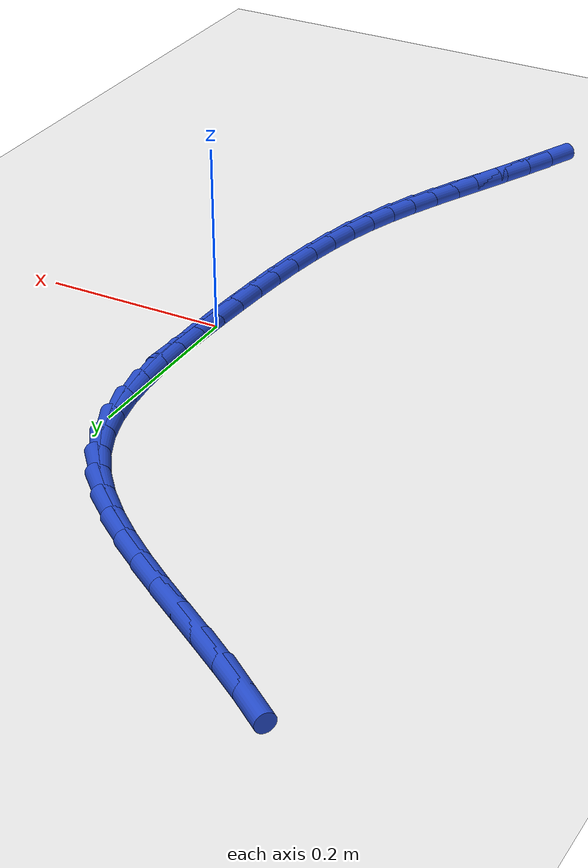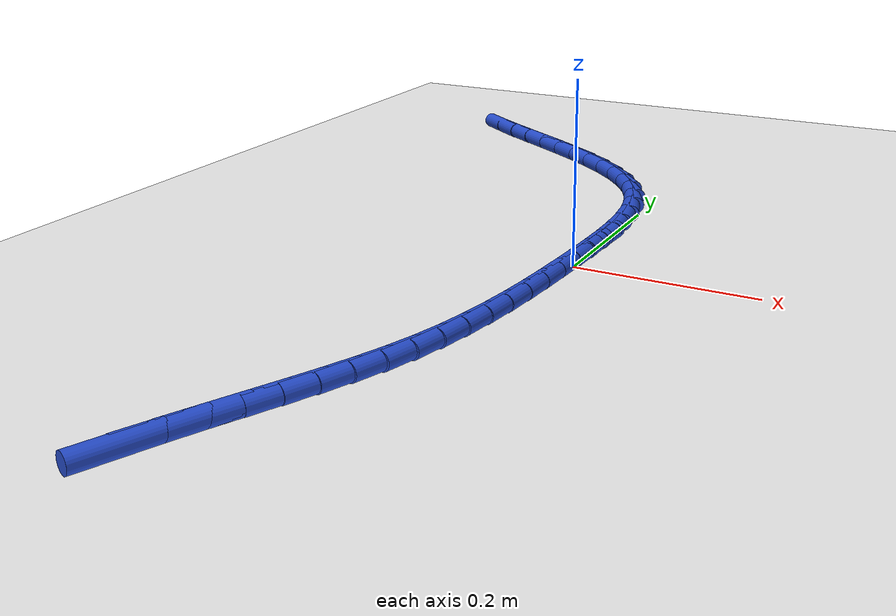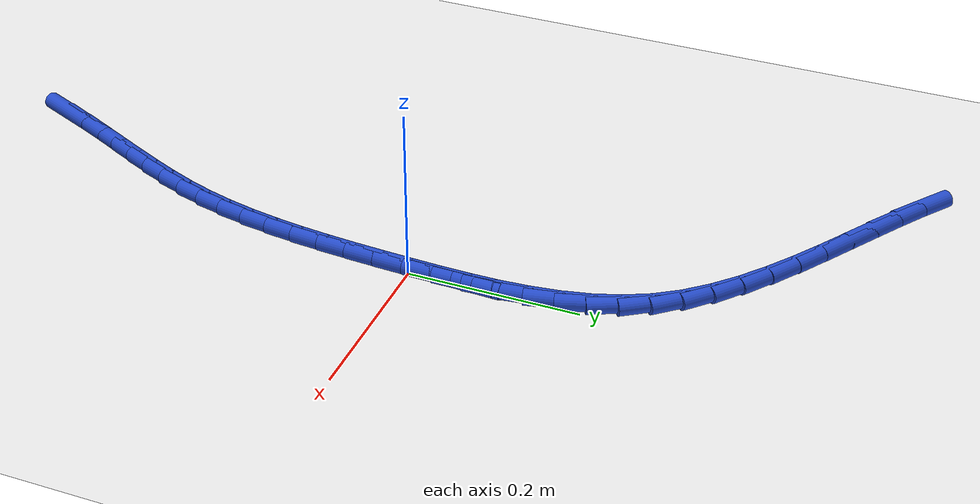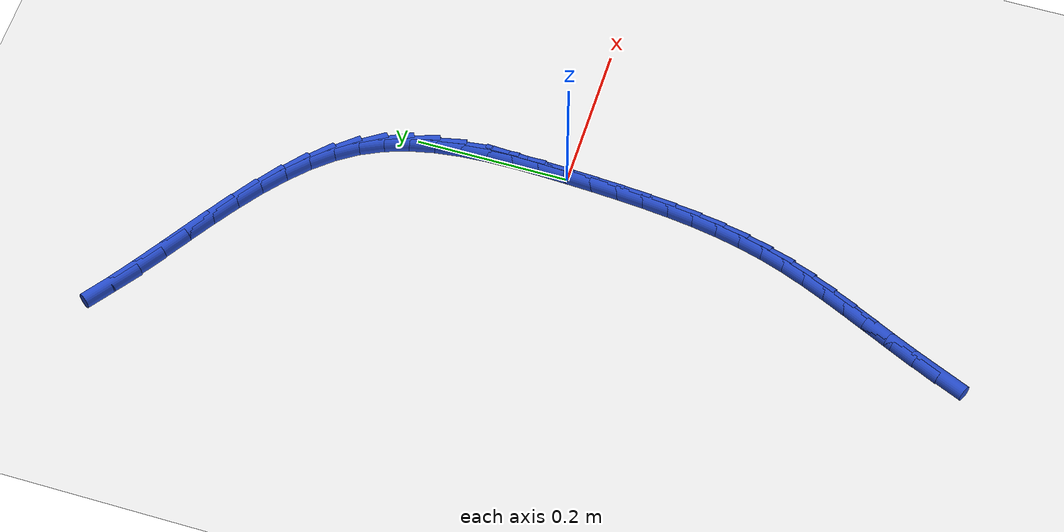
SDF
<sdf version="1.6">
 <world name="default">
  <model name="ground_plane">
   <static>1</static>
   <link name="link">
    <collision name="collision">
     <geometry><plane><normal>0 0 1</normal><size>100 100</size></plane></geometry>
     <surface><friction><ode><mu>100</mu><mu2>50</mu2></ode></friction></surface>
    </collision>
    <visual name="visual">
     <cast_shadows>0</cast_shadows>
     <geometry><plane><normal>0 0 1</normal><size>100 100</size></plane></geometry>
     <material>
      <script><uri>file://media/materials/scripts/gazebo.material</uri><name>Gazebo/WhiteGlow</name></script>
     </material>
    </visual>
   </link>
  </model>
  <model name="line">
   <link name="link_0">
    <pose>7.15573433840433e-18 6.245004513516506e-17 0.01 0 1.57 1.526935981426265</pose>
    <collision name="collision">
     <geometry><cylinder><radius>0.01</radius><length>0.08</length></cylinder></geometry>
    </collision>
    <visual name="visual">
     <material>
      <script><name>Gazebo/Blue</name><uri>file://media/materials/scripts/gazebo.material</uri></script>
     </material>
     <geometry><cylinder><radius>0.01</radius><length>0.08</length></cylinder></geometry>
    </visual>
   </link>
   <link name="link_1">
    <pose>0.0015649802183906286 0.03565809943909584 0.01 0 1.57 1.547007990299336</pose>
    <collision name="collision">
     <geometry><cylinder><radius>0.01</radius><length>0.08</length></cylinder></geometry>
    </collision>
    <visual name="visual">
     <material>
      <script><name>Gazebo/Blue</name><uri>file://media/materials/scripts/gazebo.material</uri></script>
     </material>
     <geometry><cylinder><radius>0.01</radius><length>0.08</length></cylinder></geometry>
    </visual>
   </link>
   <link name="link_2">
    <pose>0.002413735943892878 0.07133085950181656 0.01 0 1.57 -1.5597450419062657</pose>
    <collision name="collision">
     <geometry><cylinder><radius>0.01</radius><length>0.08</length></cylinder></geometry>
    </collision>
    <visual name="visual">
     <material>
      <script><name>Gazebo/Blue</name><uri>file://media/materials/scripts/gazebo.material</uri></script>
     </material>
     <geometry><cylinder><radius>0.01</radius><length>0.08</length></cylinder></geometry>
    </visual>
   </link>
   <link name="link_3">
    <pose>0.0020225366100942973 0.10672795692253452 0.01 0 1.57 -1.5090084050465444</pose>
    <collision name="collision">
     <geometry><cylinder><radius>0.01</radius><length>0.08</length></cylinder></geometry>
    </collision>
    <visual name="visual">
     <material>
      <script><name>Gazebo/Blue</name><uri>file://media/materials/scripts/gazebo.material</uri></script>
     </material>
     <geometry><cylinder><radius>0.01</radius><length>0.08</length></cylinder></geometry>
    </visual>
   </link>
   <link name="link_4">
    <pose>-0.00013234834941757475 0.14155906843562185 0.01 0 1.57 -1.4407810871709563</pose>
    <collision name="collision">
     <geometry><cylinder><radius>0.01</radius><length>0.08</length></cylinder></geometry>
    </collision>
    <visual name="visual">
     <material>
      <script><name>Gazebo/Blue</name><uri>file://media/materials/scripts/gazebo.material</uri></script>
     </material>
     <geometry><cylinder><radius>0.01</radius><length>0.08</length></cylinder></geometry>
    </visual>
   </link>
   <link name="link_5">
    <pose>-0.004574649501055192 0.175533870775451 0.01 0 1.57 -1.3533382078417666</pose>
    <collision name="collision">
     <geometry><cylinder><radius>0.01</radius><length>0.08</length></cylinder></geometry>
    </collision>
    <visual name="visual">
     <material>
      <script><name>Gazebo/Blue</name><uri>file://media/materials/scripts/gazebo.material</uri></script>
     </material>
     <geometry><cylinder><radius>0.01</radius><length>0.08</length></cylinder></geometry>
    </visual>
   </link>
   <link name="link_6">
    <pose>-0.01182809741123102 0.20836204067639408 0.01 0 1.57 -1.2454780661886489</pose>
    <collision name="collision">
     <geometry><cylinder><radius>0.01</radius><length>0.08</length></cylinder></geometry>
    </collision>
    <visual name="visual">
     <material>
      <script><name>Gazebo/Blue</name><uri>file://media/materials/scripts/gazebo.material</uri></script>
     </material>
     <geometry><cylinder><radius>0.01</radius><length>0.08</length></cylinder></geometry>
    </visual>
   </link>
   <link name="link_7">
    <pose>-0.022416422646357508 0.2397532548728233 0.01 0 1.57 -1.1175864413855836</pose>
    <collision name="collision">
     <geometry><cylinder><radius>0.01</radius><length>0.08</length></cylinder></geometry>
    </collision>
    <visual name="visual">
     <material>
      <script><name>Gazebo/Blue</name><uri>file://media/materials/scripts/gazebo.material</uri></script>
     </material>
     <geometry><cylinder><radius>0.01</radius><length>0.08</length></cylinder></geometry>
    </visual>
   </link>
   <link name="link_8">
    <pose>-0.03686335577284712 0.269417190099111 0.01 0 1.57 -0.9787864145099151</pose>
    <collision name="collision">
     <geometry><cylinder><radius>0.01</radius><length>0.08</length></cylinder></geometry>
    </collision>
    <visual name="visual">
     <material>
      <script><name>Gazebo/Blue</name><uri>file://media/materials/scripts/gazebo.material</uri></script>
     </material>
     <geometry><cylinder><radius>0.01</radius><length>0.08</length></cylinder></geometry>
    </visual>
   </link>
   <link name="link_9">
    <pose>-0.05551379721671593 0.29715140356162123 0.01 0 1.57 -0.8578253520761805</pose>
    <collision name="collision">
     <geometry><cylinder><radius>0.01</radius><length>0.08</length></cylinder></geometry>
    </collision>
    <visual name="visual">
     <material>
      <script><name>Gazebo/Blue</name><uri>file://media/materials/scripts/gazebo.material</uri></script>
     </material>
     <geometry><cylinder><radius>0.01</radius><length>0.08</length></cylinder></geometry>
    </visual>
   </link>
   <link name="link_10">
    <pose>-0.07796836102066894 0.32311920870063654 0.01 0 1.57 -0.7613462970906467</pose>
    <collision name="collision">
     <geometry><cylinder><radius>0.01</radius><length>0.08</length></cylinder></geometry>
    </collision>
    <visual name="visual">
     <material>
      <script><name>Gazebo/Blue</name><uri>file://media/materials/scripts/gazebo.material</uri></script>
     </material>
     <geometry><cylinder><radius>0.01</radius><length>0.08</length></cylinder></geometry>
    </visual>
   </link>
   <link name="link_11">
    <pose>-0.103634057336789 0.3475790595253034 0.01 0 1.57 -0.6871896803333584</pose>
    <collision name="collision">
     <geometry><cylinder><radius>0.01</radius><length>0.08</length></cylinder></geometry>
    </collision>
    <visual name="visual">
     <material>
      <script><name>Gazebo/Blue</name><uri>file://media/materials/scripts/gazebo.material</uri></script>
     </material>
     <geometry><cylinder><radius>0.01</radius><length>0.08</length></cylinder></geometry>
    </visual>
   </link>
   <link name="link_12">
    <pose>-0.13191789588612848 0.3707894102565844 0.01 0 1.57 -0.6325924469153109</pose>
    <collision name="collision">
     <geometry><cylinder><radius>0.01</radius><length>0.08</length></cylinder></geometry>
    </collision>
    <visual name="visual">
     <material>
      <script><name>Gazebo/Blue</name><uri>file://media/materials/scripts/gazebo.material</uri></script>
     </material>
     <geometry><cylinder><radius>0.01</radius><length>0.08</length></cylinder></geometry>
    </visual>
   </link>
   <link name="link_13">
    <pose>-0.16222688638973973 0.39300871511544244 0.01 0 1.57 -0.5950781534837368</pose>
    <collision name="collision">
     <geometry><cylinder><radius>0.01</radius><length>0.08</length></cylinder></geometry>
    </collision>
    <visual name="visual">
     <material>
      <script><name>Gazebo/Blue</name><uri>file://media/materials/scripts/gazebo.material</uri></script>
     </material>
     <geometry><cylinder><radius>0.01</radius><length>0.08</length></cylinder></geometry>
    </visual>
   </link>
   <link name="link_14">
    <pose>-0.19396803856867534 0.41449542832284053 0.01 0 1.57 -0.572814684261864</pose>
    <collision name="collision">
     <geometry><cylinder><radius>0.01</radius><length>0.08</length></cylinder></geometry>
    </collision>
    <visual name="visual">
     <material>
      <script><name>Gazebo/Blue</name><uri>file://media/materials/scripts/gazebo.material</uri></script>
     </material>
     <geometry><cylinder><radius>0.01</radius><length>0.08</length></cylinder></geometry>
    </visual>
   </link>
   <link name="link_15">
    <pose>-0.2265483621439877 0.43550800409974133 0.01 0 1.57 -0.5647166380640539</pose>
    <collision name="collision">
     <geometry><cylinder><radius>0.01</radius><length>0.08</length></cylinder></geometry>
    </collision>
    <visual name="visual">
     <material>
      <script><name>Gazebo/Blue</name><uri>file://media/materials/scripts/gazebo.material</uri></script>
     </material>
     <geometry><cylinder><radius>0.01</radius><length>0.08</length></cylinder></geometry>
    </visual>
   </link>
   <link name="link_16">
    <pose>-0.2593748668367293 0.4563048966671078 0.01 0 1.57 -0.5704625095506994</pose>
    <collision name="collision">
     <geometry><cylinder><radius>0.01</radius><length>0.08</length></cylinder></geometry>
    </collision>
    <visual name="visual">
     <material>
      <script><name>Gazebo/Blue</name><uri>file://media/materials/scripts/gazebo.material</uri></script>
     </material>
     <geometry><cylinder><radius>0.01</radius><length>0.08</length></cylinder></geometry>
    </visual>
   </link>
   <link name="link_17">
    <pose>-0.29185456236795254 0.47714456024590235 0.01 0 1.57 -0.5905071314055473</pose>
    <collision name="collision">
     <geometry><cylinder><radius>0.01</radius><length>0.08</length></cylinder></geometry>
    </collision>
    <visual name="visual">
     <material>
      <script><name>Gazebo/Blue</name><uri>file://media/materials/scripts/gazebo.material</uri></script>
     </material>
     <geometry><cylinder><radius>0.01</radius><length>0.08</length></cylinder></geometry>
    </visual>
   </link>
   <link name="link_18">
    <pose>-0.32339445845870973 0.4982854490570881 0.01 0 1.57 -0.6261148427597982</pose>
    <collision name="collision">
     <geometry><cylinder><radius>0.01</radius><length>0.08</length></cylinder></geometry>
    </collision>
    <visual name="visual">
     <material>
      <script><name>Gazebo/Blue</name><uri>file://media/materials/scripts/gazebo.material</uri></script>
     </material>
     <geometry><cylinder><radius>0.01</radius><length>0.08</length></cylinder></geometry>
    </visual>
   </link>
   <link name="link_214">
    <pose>-0.14520213052881767 -0.5186720141810783 0.01 0 1.57 1.162743685924393</pose>
    <collision name="collision">
     <geometry><cylinder><radius>0.01</radius><length>0.08</length></cylinder></geometry>
    </collision>
    <visual name="visual">
     <material>
      <script><name>Gazebo/Blue</name><uri>file://media/materials/scripts/gazebo.material</uri></script>
     </material>
     <geometry><cylinder><radius>0.01</radius><length>0.08</length></cylinder></geometry>
    </visual>
   </link>
   <link name="link_215">
    <pose>-0.1306432541980017 -0.48499569608438936 0.01 0 1.57 1.1402318179567368</pose>
    <collision name="collision">
     <geometry><cylinder><radius>0.01</radius><length>0.08</length></cylinder></geometry>
    </collision>
    <visual name="visual">
     <material>
      <script><name>Gazebo/Blue</name><uri>file://media/materials/scripts/gazebo.material</uri></script>
     </material>
     <geometry><cylinder><radius>0.01</radius><length>0.08</length></cylinder></geometry>
    </visual>
   </link>
   <link name="link_216">
    <pose>-0.11578570755221296 -0.45264776906128423 0.01 0 1.57 1.1278447509688985</pose>
    <collision name="collision">
     <geometry><cylinder><radius>0.01</radius><length>0.08</length></cylinder></geometry>
    </collision>
    <visual name="visual">
     <material>
      <script><name>Gazebo/Blue</name><uri>file://media/materials/scripts/gazebo.material</uri></script>
     </material>
     <geometry><cylinder><radius>0.01</radius><length>0.08</length></cylinder></geometry>
    </visual>
   </link>
   <link name="link_217">
    <pose>-0.1009256925518129 -0.4213233856729697 0.01 0 1.57 1.1265863588372456</pose>
    <collision name="collision">
     <geometry><cylinder><radius>0.01</radius><length>0.08</length></cylinder></geometry>
    </collision>
    <visual name="visual">
     <material>
      <script><name>Gazebo/Blue</name><uri>file://media/materials/scripts/gazebo.material</uri></script>
     </material>
     <geometry><cylinder><radius>0.01</radius><length>0.08</length></cylinder></geometry>
    </visual>
   </link>
   <link name="link_218">
    <pose>-0.08635941115716339 -0.3907176984806529 0.01 0 1.57 1.1372518603823982</pose>
    <collision name="collision">
     <geometry><cylinder><radius>0.01</radius><length>0.08</length></cylinder></geometry>
    </collision>
    <visual name="visual">
     <material>
      <script><name>Gazebo/Blue</name><uri>file://media/materials/scripts/gazebo.material</uri></script>
     </material>
     <geometry><cylinder><radius>0.01</radius><length>0.08</length></cylinder></geometry>
    </visual>
   </link>
   <link name="link_219">
    <pose>-0.07238306532862591 -0.3605258600455404 0.01 0 1.57 1.1603694996517542</pose>
    <collision name="collision">
     <geometry><cylinder><radius>0.01</radius><length>0.08</length></cylinder></geometry>
    </collision>
    <visual name="visual">
     <material>
      <script><name>Gazebo/Blue</name><uri>file://media/materials/scripts/gazebo.material</uri></script>
     </material>
     <geometry><cylinder><radius>0.01</radius><length>0.08</length></cylinder></geometry>
    </visual>
   </link>
   <link name="link_220">
    <pose>-0.05929285702656302 -0.3304430229288408 0.01 0 1.57 1.196100210847417</pose>
    <collision name="collision">
     <geometry><cylinder><radius>0.01</radius><length>0.08</length></cylinder></geometry>
    </collision>
    <visual name="visual">
     <material>
      <script><name>Gazebo/Blue</name><uri>file://media/materials/scripts/gazebo.material</uri></script>
     </material>
     <geometry><cylinder><radius>0.01</radius><length>0.08</length></cylinder></geometry>
    </visual>
   </link>
   <link name="link_221">
    <pose>-0.04738498821133621 -0.30016433969176065 0.01 0 1.57 1.2440967167315018</pose>
    <collision name="collision">
     <geometry><cylinder><radius>0.01</radius><length>0.08</length></cylinder></geometry>
    </collision>
    <visual name="visual">
     <material>
      <script><name>Gazebo/Blue</name><uri>file://media/materials/scripts/gazebo.material</uri></script>
     </material>
     <geometry><cylinder><radius>0.01</radius><length>0.08</length></cylinder></geometry>
    </visual>
   </link>
   <link name="link_222">
    <pose>-0.03695566065295522 -0.2693849630370883 0.01 0 1.57 1.3003160350132286</pose>
    <collision name="collision">
     <geometry><cylinder><radius>0.01</radius><length>0.08</length></cylinder></geometry>
    </collision>
    <visual name="visual">
     <material>
      <script><name>Gazebo/Blue</name><uri>file://media/materials/scripts/gazebo.material</uri></script>
     </material>
     <geometry><cylinder><radius>0.01</radius><length>0.08</length></cylinder></geometry>
    </visual>
   </link>
   <link name="link_223">
    <pose>-0.028215576547936615 -0.23786363893733392 0.01 0 1.57 1.3521294109840325</pose>
    <collision name="collision">
     <geometry><cylinder><radius>0.01</radius><length>0.08</length></cylinder></geometry>
    </collision>
    <visual name="visual">
     <material>
      <script><name>Gazebo/Blue</name><uri>file://media/materials/scripts/gazebo.material</uri></script>
     </material>
     <geometry><cylinder><radius>0.01</radius><length>0.08</length></cylinder></geometry>
    </visual>
   </link>
   <link name="link_224">
    <pose>-0.02104674548168748 -0.2056035898813284 0.01 0 1.57 1.3966493080740916</pose>
    <collision name="collision">
     <geometry><cylinder><radius>0.01</radius><length>0.08</length></cylinder></geometry>
    </collision>
    <visual name="visual">
     <material>
      <script><name>Gazebo/Blue</name><uri>file://media/materials/scripts/gazebo.material</uri></script>
     </material>
     <geometry><cylinder><radius>0.01</radius><length>0.08</length></cylinder></geometry>
    </visual>
   </link>
   <link name="link_225">
    <pose>-0.015252201866737106 -0.17266677887864249 0.01 0 1.57 1.4340398041503732</pose>
    <collision name="collision">
     <geometry><cylinder><radius>0.01</radius><length>0.08</length></cylinder></geometry>
    </collision>
    <visual name="visual">
     <material>
      <script><name>Gazebo/Blue</name><uri>file://media/materials/scripts/gazebo.material</uri></script>
     </material>
     <geometry><cylinder><radius>0.01</radius><length>0.08</length></cylinder></geometry>
    </visual>
   </link>
   <link name="link_226">
    <pose>-0.01063498011561502 -0.13911516893884734 0.01 0 1.57 1.464558776732543</pose>
    <collision name="collision">
     <geometry><cylinder><radius>0.01</radius><length>0.08</length></cylinder></geometry>
    </collision>
    <visual name="visual">
     <material>
      <script><name>Gazebo/Blue</name><uri>file://media/materials/scripts/gazebo.material</uri></script>
     </material>
     <geometry><cylinder><radius>0.01</radius><length>0.08</length></cylinder></geometry>
    </visual>
   </link>
   <link name="link_227">
    <pose>-0.00699811464085074 -0.1050107230715143 0.01 0 1.57 1.488501084271069</pose>
    <collision name="collision">
     <geometry><cylinder><radius>0.01</radius><length>0.08</length></cylinder></geometry>
    </collision>
    <visual name="visual">
     <material>
      <script><name>Gazebo/Blue</name><uri>file://media/materials/scripts/gazebo.material</uri></script>
     </material>
     <geometry><cylinder><radius>0.01</radius><length>0.08</length></cylinder></geometry>
    </visual>
   </link>
   <link name="link_228">
    <pose>-0.004144639854973733 -0.07041540428621375 0.01 0 1.57 1.5061584574206612</pose>
    <collision name="collision">
     <geometry><cylinder><radius>0.01</radius><length>0.08</length></cylinder></geometry>
    </collision>
    <visual name="visual">
     <material>
      <script><name>Gazebo/Blue</name><uri>file://media/materials/scripts/gazebo.material</uri></script>
     </material>
     <geometry><cylinder><radius>0.01</radius><length>0.08</length></cylinder></geometry>
    </visual>
   </link>
   <link name="link_229">
    <pose>-0.0018775901705136658 -0.035391175592518774 0.01 0 1.57 1.517793521058108</pose>
    <collision name="collision">
     <geometry><cylinder><radius>0.01</radius><length>0.08</length></cylinder></geometry>
    </collision>
    <visual name="visual">
     <material>
      <script><name>Gazebo/Blue</name><uri>file://media/materials/scripts/gazebo.material</uri></script>
     </material>
     <geometry><cylinder><radius>0.01</radius><length>0.08</length></cylinder></geometry>
    </visual>
   </link>
   <link name="link_230">
    <pose>1.2793585635328952e-17 1.5959455978986625e-16 0.01 0 1.57 1.5236246923191972</pose>
    <collision name="collision">
     <geometry><cylinder><radius>0.01</radius><length>0.08</length></cylinder></geometry>
    </collision>
    <visual name="visual">
     <material>
      <script><name>Gazebo/Blue</name><uri>file://media/materials/scripts/gazebo.material</uri></script>
     </material>
     <geometry><cylinder><radius>0.01</radius><length>0.08</length></cylinder></geometry>
    </visual>
   </link>
   <link name="link_231">
    <pose>0.0016850962440377814 0.03569615948177182 0.01 0 1.57 1.5238190495549697</pose>
    <collision name="collision">
     <geometry><cylinder><radius>0.01</radius><length>0.08</length></cylinder></geometry>
    </collision>
    <visual name="visual">
     <material>
      <script><name>Gazebo/Blue</name><uri>file://media/materials/scripts/gazebo.material</uri></script>
     </material>
     <geometry><cylinder><radius>0.01</radius><length>0.08</length></cylinder></geometry>
    </visual>
   </link>
   <link name="link_232">
    <pose>0.0033746641490701116 0.07163533984322487 0.01 0 1.57 1.5237222001679382</pose>
    <collision name="collision">
     <geometry><cylinder><radius>0.01</radius><length>0.08</length></cylinder></geometry>
    </collision>
    <visual name="visual">
     <material>
      <script><name>Gazebo/Blue</name><uri>file://media/materials/scripts/gazebo.material</uri></script>
     </material>
     <geometry><cylinder><radius>0.01</radius><length>0.08</length></cylinder></geometry>
    </visual>
   </link>
  </model>
 </world>
</sdf>
